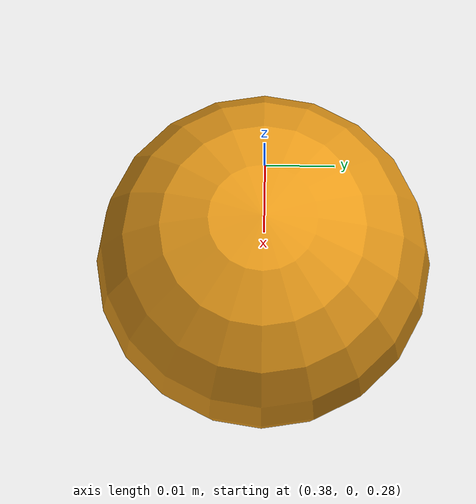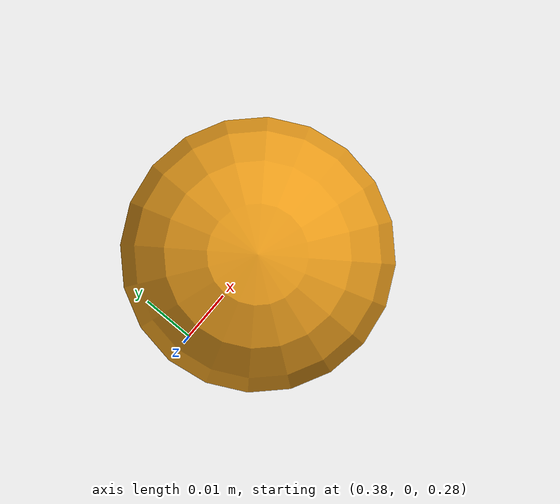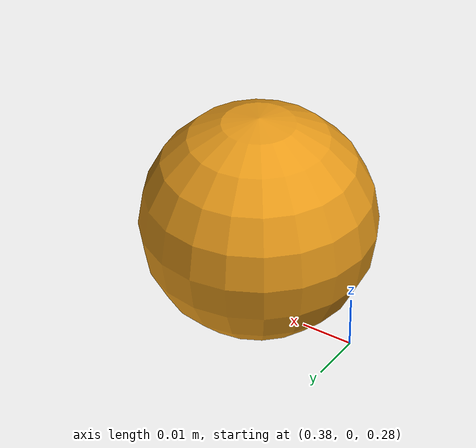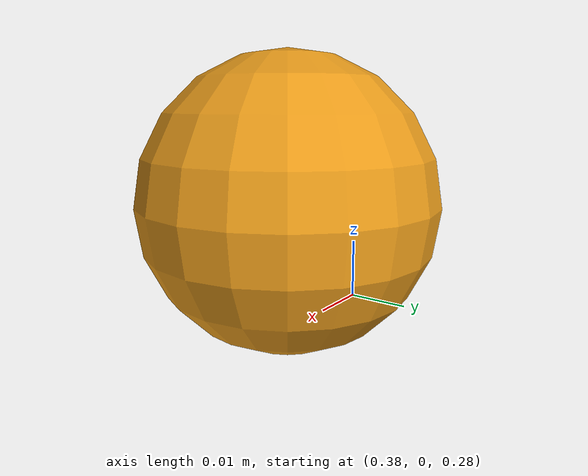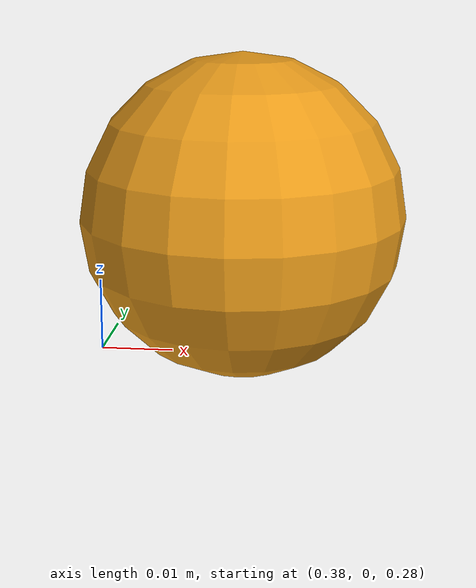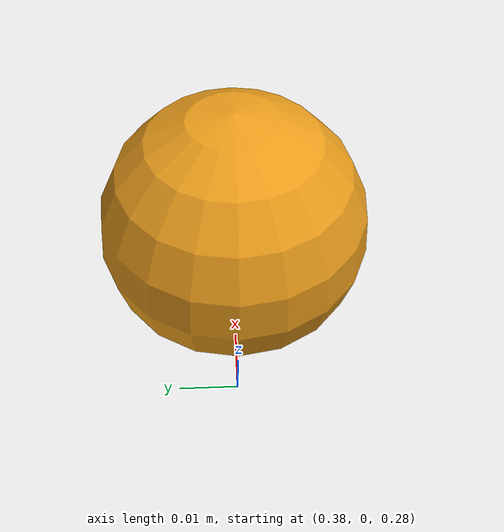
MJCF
<?xml version="1.0"?>
<mujoco model="sphere">
  <worldbody>
    <body name="sphere" pos="0.4 0 0.3">
      <freejoint name="sphere_joint"/>
      <!-- A small ball: rolls freely and has no flat faces, so it is the hardest
           free object to grasp/lift (high-fragility pick_place). Radius 0.022. -->
      <geom type="sphere" name="sphere_geom" size="0.022" mass="0.05"
            rgba="0.9 0.6 0.1 1.0" condim="6" friction="1 0.03 0.003"
            contype="1" conaffinity="1" solref="0.01 1"/>
      <site name="object_site" pos="0 0 0" size="0.01" rgba="1 0 0 1"/>
    </body>
  </worldbody>
</mujoco>
